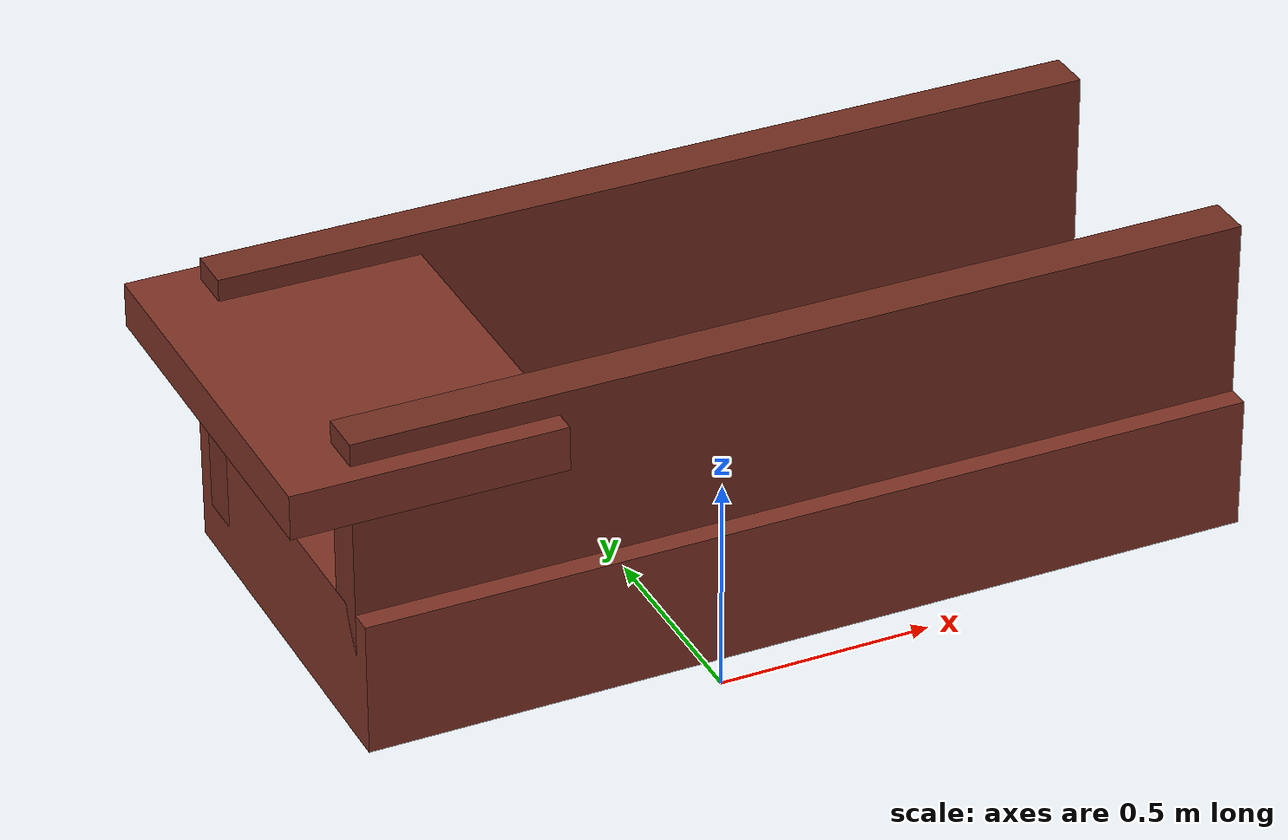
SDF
<?xml version="1.0"?>
<sdf version="1.10">
  <model name="Sofa">
    <static>true</static>
    <link name="sofa_body">
      <pose>0 0 0.4 0 0 0</pose>
      <collision name="collision">
        <geometry>
          <box>
            <size>2.0 0.9 0.8</size>
          </box>
        </geometry>
      </collision>
      <visual name="seat">
        <pose>0 0 0.15 0 0 0</pose>
        <geometry>
          <box>
            <size>2.0 0.9 0.3</size>
          </box>
        </geometry>
        <material>
          <ambient>0.4 0.15 0.1 1</ambient>
          <diffuse>0.5 0.2 0.15 1</diffuse>
          <specular>0.1 0.05 0.05 1</specular>
        </material>
      </visual>
      <visual name="back">
        <pose>-0.85 0 0.6 0 1.57079632679 0</pose>
        <geometry>
          <box>
            <size>0.1 0.9 0.6</size>
          </box>
        </geometry>
        <material>
          <ambient>0.4 0.15 0.1 1</ambient>
          <diffuse>0.5 0.2 0.15 1</diffuse>
          <specular>0.1 0.05 0.05 1</specular>
        </material>
      </visual>
      <visual name="arm_left">
        <pose>0 0.35 0.4 0 0 0</pose>
        <geometry>
          <box>
            <size>2.0 0.1 0.6</size>
          </box>
        </geometry>
        <material>
          <ambient>0.35 0.13 0.09 1</ambient>
          <diffuse>0.45 0.18 0.13 1</diffuse>
          <specular>0.08 0.04 0.04 1</specular>
        </material>
      </visual>
      <visual name="arm_right">
        <pose>0 -0.35 0.4 0 0 0</pose>
        <geometry>
          <box>
            <size>2.0 0.1 0.6</size>
          </box>
        </geometry>
        <material>
          <ambient>0.35 0.13 0.09 1</ambient>
          <diffuse>0.45 0.18 0.13 1</diffuse>
          <specular>0.08 0.04 0.04 1</specular>
        </material>
      </visual>
      <inertial>
        <mass>20.0</mass>
        <inertia>
          <ixx>1.0</ixx>
          <iyy>1.0</iyy>
          <izz>1.0</izz>
          <ixy>0</ixy>
          <ixz>0</ixz>
          <iyz>0</iyz>
        </inertia>
      </inertial>
    </link>
  </model>
</sdf>
